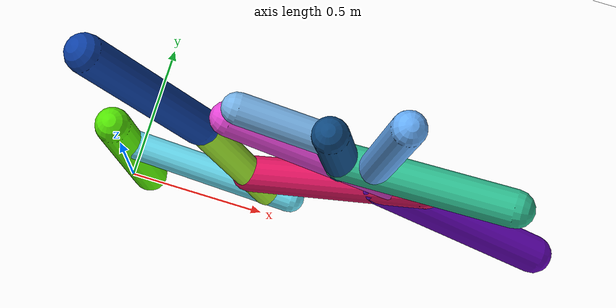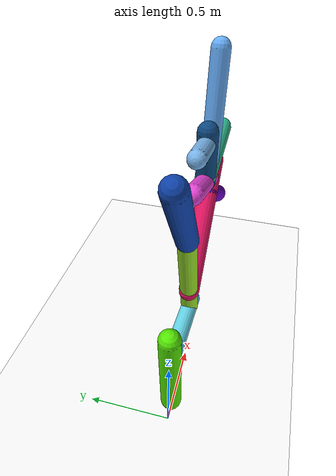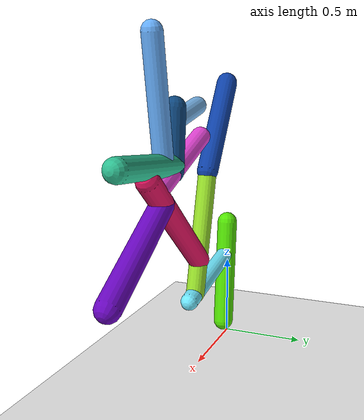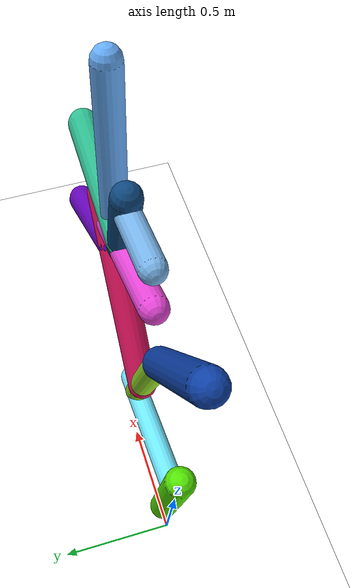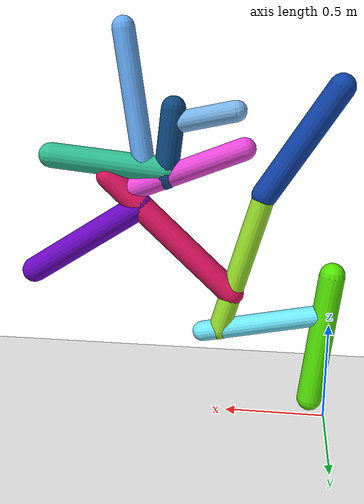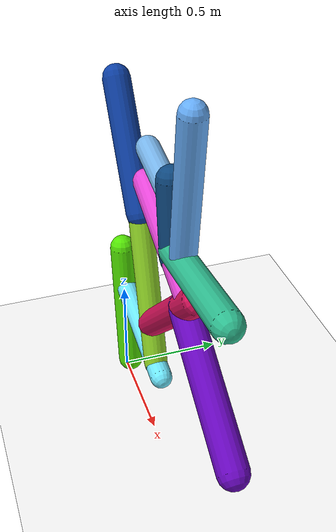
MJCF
<mujoco model="morphology">
  <option timestep="0.01"/>
  <default>
    <default class="/"/>
    <default class="0/"/>
    <default class="0/1/"/>
    <default class="0/1/2/"/>
    <default class="0/1/2/3/"/>
    <default class="0/1/2/4/"/>
    <default class="0/1/2/4/5/"/>
    <default class="0/1/2/4/5/6/"/>
    <default class="0/1/2/4/5/6/7/"/>
    <default class="0/1/2/4/5/6/7/8/"/>
    <default class="0/1/2/4/5/6/9/"/>
    <default class="0/1/2/4/10/"/>
  </default>
  <asset>
    <texture name="texplane" type="2d" builtin="checker" rgb1="0.10000000000000001 0.20000000000000001 0.29999999999999999" rgb2="0.20000000000000001 0.29999999999999999 0.40000000000000002" width="300" height="300"/>
    <material name="MatPlane" class="/" texture="texplane" texrepeat="20 20" specular="1" shininess="1" reflectance="0.5"/>
  </asset>
  <worldbody>
    <light name="//unnamed_light_0" class="/" directional="true" pos="0 0 1.5" dir="0 0 -1.3" cutoff="100" exponent="1" diffuse="1 1 1" specular="0.10000000000000001 0.10000000000000001 0.10000000000000001"/>
    <geom name="ground" class="/" type="plane" size="15 15 0.5" material="MatPlane" rgba="1 1 1 1"/>
    <site name="body" class="/" size="9.9999999999999995e-07 9.9999999999999995e-07 9.9999999999999995e-07" pos="0 0 0.76044527292251585"/>
    <body pos="0 0 0.76044527292251585" name="0/">
      <joint name="0/rootx/" class="/" type="slide" axis="1 0 0" limited="false" stiffness="0" armature="0" damping="0"/>
      <joint name="0/rootz/" class="/" type="slide" axis="0 0 1" limited="false" stiffness="0" armature="0" damping="0"/>
      <joint name="0/rooty/" class="/" type="hinge" axis="0 1 0" limited="false" stiffness="0" armature="0" damping="0"/>
      <geom name="0/geom" class="0/" type="capsule" contype="1" conaffinity="1" condim="3" size="0.062408273367244319" rgba="0.33161644513212596 0.90477864150753562 0.015341065678147414 1" friction="0.59999999999999998 0.10000000000000001 0.10000000000000001" fromto="0 0 0 0.075499958590461658 0 -0.66044529553857001"/>
      <site name="0/end0" class="0/" size="0.0050000000000000001" pos="0.075499958590461658 0 -0.66044529553857001"/>
      <site name="0/attach1" class="0/" size="9.9999999999999995e-07 9.9999999999999995e-07 9.9999999999999995e-07" pos="0.02317041613678775 0 -0.20268610233576639"/>
      <body pos="0.02317041613678775 0 -0.20268610233576639" name="0/1/">
        <joint name="0/1/joint/" class="0/" type="hinge" axis="0 1 0" limited="true" range="-40.633141095285517 40.633141095285517"/>
        <geom name="0/1/geom" class="0/1/" type="capsule" contype="1" conaffinity="1" condim="3" size="0.050626740572416173" rgba="0.43516016931499235 0.91077198790241665 0.99811117985828313 1" friction="0.59999999999999998 0.10000000000000001 0.10000000000000001" fromto="0 0 0 0.59918806983624529 0 -0.12056060662292734"/>
        <site name="0/1/end1" class="0/1/" size="0.0050000000000000001" pos="0.59918806983624529 0 -0.12056060662292734"/>
        <site name="0/1/attach2" class="0/1/" size="9.9999999999999995e-07 9.9999999999999995e-07 9.9999999999999995e-07" pos="0.51672277049591431 0 -0.10396804242763436"/>
        <body pos="0.51672277049591431 0 -0.10396804242763436" name="0/1/2/">
          <joint name="0/1/2/joint/" class="0/1/" type="hinge" axis="0 1 0" limited="true" range="-50.62074529306328 50.62074529306328"/>
          <geom name="0/1/2/geom" class="0/1/2/" type="capsule" contype="1" conaffinity="1" condim="3" size="0.053847392646408844" rgba="0.59620682072397824 0.87615425357209764 0.16448723349275185 1" friction="0.59999999999999998 0.10000000000000001 0.10000000000000001" fromto="0 0 0 -0.20597902554505287 0 0.70004979252250843"/>
          <site name="0/1/2/end2" class="0/1/2/" size="0.0050000000000000001" pos="-0.20597902554505287 0 0.70004979252250843"/>
          <site name="0/1/2/attach3" class="0/1/2/" size="9.9999999999999995e-07 9.9999999999999995e-07 9.9999999999999995e-07" pos="-0.20431257284931606 0 0.69438610972367909"/>
          <body pos="-0.20431257284931606 0 0.69438610972367909" name="0/1/2/3/">
            <joint name="0/1/2/3/joint/" class="0/1/2/" type="hinge" axis="0 1 0" limited="true" range="-61.649365478478231 61.649365478478231"/>
            <geom name="0/1/2/3/geom" class="0/1/2/3/" type="capsule" contype="1" conaffinity="1" condim="3" size="0.062330438733357821" rgba="0.053646704453640837 0.25581050117601123 0.65546794519685947 1" friction="0.59999999999999998 0.10000000000000001 0.10000000000000001" fromto="0 0 0 -0.32644542957926065 0 0.50049081098624826"/>
            <site name="0/1/2/3/end3" class="0/1/2/3/" size="0.0050000000000000001" pos="-0.32644542957926065 0 0.50049081098624826"/>
          </body>
          <site name="0/1/2/attach4" class="0/1/2/" size="9.9999999999999995e-07 9.9999999999999995e-07 9.9999999999999995e-07" pos="-0.05744887869859297 0 0.19524840214764616"/>
          <body pos="-0.05744887869859297 0 0.19524840214764616" name="0/1/2/4/">
            <joint name="0/1/2/4/joint/" class="0/1/2/" type="hinge" axis="0 1 0" limited="true" range="-30.3884402356714 30.3884402356714"/>
            <geom name="0/1/2/4/geom" class="0/1/2/4/" type="capsule" contype="1" conaffinity="1" condim="3" size="0.06212725768543436" rgba="0.88762937560381139 0.075787000197588883 0.37905867447495811 1" friction="0.59999999999999998 0.10000000000000001 0.10000000000000001" fromto="0 0 0 0.60070099394515974 0 0.56938812010222439"/>
            <site name="0/1/2/4/end4" class="0/1/2/4/" size="0.0050000000000000001" pos="0.60070099394515974 0 0.56938812010222439"/>
            <site name="0/1/2/4/attach5" class="0/1/2/4/" size="9.9999999999999995e-07 9.9999999999999995e-07 9.9999999999999995e-07" pos="0.52157639300949787 0 0.49438806477568326"/>
            <body pos="0.52157639300949787 0 0.49438806477568326" name="0/1/2/4/5/">
              <joint name="0/1/2/4/5/joint/" class="0/1/2/4/" type="hinge" axis="0 1 0" limited="true" range="-59.285758113615486 59.285758113615486"/>
              <geom name="0/1/2/4/5/geom" class="0/1/2/4/5/" type="capsule" contype="1" conaffinity="1" condim="3" size="0.055103664954672282" rgba="0.90512630978425546 0.27440317970663153 0.84696145563635894 1" friction="0.59999999999999998 0.10000000000000001 0.10000000000000001" fromto="0 0 0 -0.56813728588925316 0 0.21912153448560689"/>
              <site name="0/1/2/4/5/end5" class="0/1/2/4/5/" size="0.0050000000000000001" pos="-0.56813728588925316 0 0.21912153448560689"/>
              <site name="0/1/2/4/5/attach6" class="0/1/2/4/5/" size="9.9999999999999995e-07 9.9999999999999995e-07 9.9999999999999995e-07" pos="-0.19659873720170012 0 0.075825012797992072"/>
              <body pos="-0.19659873720170012 0 0.075825012797992072" name="0/1/2/4/5/6/">
                <joint name="0/1/2/4/5/6/joint/" class="0/1/2/4/5/" type="hinge" axis="0 1 0" limited="true" range="-50.747436435796843 50.747436435796843"/>
                <geom name="0/1/2/4/5/6/geom" class="0/1/2/4/5/6/" type="capsule" contype="1" conaffinity="1" condim="3" size="0.058726516797242688" rgba="0.055528419692795539 0.28544341866804024 0.50363583345404717 1" friction="0.59999999999999998 0.10000000000000001 0.10000000000000001" fromto="0 0 0 -0.039714523546120706 0 0.32512781393988566"/>
                <site name="0/1/2/4/5/6/end6" class="0/1/2/4/5/6/" size="0.0050000000000000001" pos="-0.039714523546120706 0 0.32512781393988566"/>
                <site name="0/1/2/4/5/6/attach7" class="0/1/2/4/5/6/" size="9.9999999999999995e-07 9.9999999999999995e-07 9.9999999999999995e-07" pos="-0.0042982778689156275 0 0.03518837851859951"/>
                <body pos="-0.0042982778689156275 0 0.03518837851859951" name="0/1/2/4/5/6/7/">
                  <joint name="0/1/2/4/5/6/7/joint/" class="0/1/2/4/5/6/" type="hinge" axis="0 1 0" limited="true" range="-50.14625083598095 50.14625083598095"/>
                  <geom name="0/1/2/4/5/6/7/geom" class="0/1/2/4/5/6/7/" type="capsule" contype="1" conaffinity="1" condim="3" size="0.06145487876017261" rgba="0.18143755716118526 0.74699324713255422 0.5707595235138353 1" friction="0.59999999999999998 0.10000000000000001 0.10000000000000001" fromto="0 0 0 0.56024131985453551 0 0.059405230056452485"/>
                  <site name="0/1/2/4/5/6/7/end7" class="0/1/2/4/5/6/7/" size="0.0050000000000000001" pos="0.56024131985453551 0 0.059405230056452485"/>
                  <site name="0/1/2/4/5/6/7/attach8" class="0/1/2/4/5/6/7/" size="9.9999999999999995e-07 9.9999999999999995e-07 9.9999999999999995e-07" pos="0.10593144504349987 0 0.011232448660972536"/>
                  <body pos="0.10593144504349987 0 0.011232448660972536" name="0/1/2/4/5/6/7/8/">
                    <joint name="0/1/2/4/5/6/7/8/joint/" class="0/1/2/4/5/6/7/" type="hinge" axis="0 1 0" limited="true" range="-48.479692798019798 48.479692798019798"/>
                    <geom name="0/1/2/4/5/6/7/8/geom" class="0/1/2/4/5/6/7/8/" type="capsule" contype="1" conaffinity="1" condim="3" size="0.053362960644501078" rgba="0.40044778997859332 0.68072293073565115 0.97867588996948862 1" friction="0.59999999999999998 0.10000000000000001 0.10000000000000001" fromto="0 0 0 0.087214634554555914 0 0.63742491694176584"/>
                    <site name="0/1/2/4/5/6/7/8/end8" class="0/1/2/4/5/6/7/8/" size="0.0050000000000000001" pos="0.087214634554555914 0 0.63742491694176584"/>
                  </body>
                </body>
                <site name="0/1/2/4/5/6/attach9" class="0/1/2/4/5/6/" size="9.9999999999999995e-07 9.9999999999999995e-07 9.9999999999999995e-07" pos="-0.031201688361056874 0 0.25543644546769106"/>
                <body pos="-0.031201688361056874 0 0.25543644546769106" name="0/1/2/4/5/6/9/">
                  <joint name="0/1/2/4/5/6/9/joint/" class="0/1/2/4/5/6/" type="hinge" axis="0 1 0" limited="true" range="-39.648360716127563 39.648360716127563"/>
                  <geom name="0/1/2/4/5/6/9/geom" class="0/1/2/4/5/6/9/" type="capsule" contype="1" conaffinity="1" condim="3" size="0.050402523478131865" rgba="0.46887218050691093 0.70476973879423666 0.91398405681913519 1" friction="0.59999999999999998 0.10000000000000001 0.10000000000000001" fromto="0 0 0 -0.29891923598342468 0 0.061583813148457178"/>
                  <site name="0/1/2/4/5/6/9/end9" class="0/1/2/4/5/6/9/" size="0.0050000000000000001" pos="-0.29891923598342468 0 0.061583813148457178"/>
                </body>
              </body>
            </body>
            <site name="0/1/2/4/attach10" class="0/1/2/4/" size="9.9999999999999995e-07 9.9999999999999995e-07 9.9999999999999995e-07" pos="0.44910040600977752 0 0.42569004961293255"/>
            <body pos="0.44910040600977752 0 0.42569004961293255" name="0/1/2/4/10/">
              <geom name="0/1/2/4/10/geom" class="0/1/2/4/10/" type="capsule" contype="1" conaffinity="1" condim="3" size="0.063427349035879987" rgba="0.4110472158395303 0.021823549590648805 0.75374610649429863 1" friction="0.59999999999999998 0.10000000000000001 0.10000000000000001" fromto="0 0 0 0.54846901837314643 0 -0.34891997513849049"/>
              <site name="0/1/2/4/10/end10" class="0/1/2/4/10/" size="0.0050000000000000001" pos="0.54846901837314643 0 -0.34891997513849049"/>
            </body>
          </body>
        </body>
      </body>
      <camera name="0/side" class="0/" mode="trackcom" pos="0.40000000000000002 -4 0.20000000000000001" quat="0.70699999999999996 0.70699999999999996 0 0"/>
    </body>
  </worldbody>
  <actuator>
    <motor name="0/1/motor" class="0/1/" ctrllimited="true" ctrlrange="-1 1" gear="73" joint="0/1/joint/"/>
    <motor name="0/1/2/motor" class="0/1/2/" ctrllimited="true" ctrlrange="-1 1" gear="54" joint="0/1/2/joint/"/>
    <motor name="0/1/2/3/motor" class="0/1/2/3/" ctrllimited="true" ctrlrange="-1 1" gear="57" joint="0/1/2/3/joint/"/>
    <motor name="0/1/2/4/motor" class="0/1/2/4/" ctrllimited="true" ctrlrange="-1 1" gear="85" joint="0/1/2/4/joint/"/>
    <motor name="0/1/2/4/5/motor" class="0/1/2/4/5/" ctrllimited="true" ctrlrange="-1 1" gear="66" joint="0/1/2/4/5/joint/"/>
    <motor name="0/1/2/4/5/6/motor" class="0/1/2/4/5/6/" ctrllimited="true" ctrlrange="-1 1" gear="75" joint="0/1/2/4/5/6/joint/"/>
    <motor name="0/1/2/4/5/6/7/motor" class="0/1/2/4/5/6/7/" ctrllimited="true" ctrlrange="-1 1" gear="71" joint="0/1/2/4/5/6/7/joint/"/>
    <motor name="0/1/2/4/5/6/7/8/motor" class="0/1/2/4/5/6/7/8/" ctrllimited="true" ctrlrange="-1 1" gear="60" joint="0/1/2/4/5/6/7/8/joint/"/>
    <motor name="0/1/2/4/5/6/9/motor" class="0/1/2/4/5/6/9/" ctrllimited="true" ctrlrange="-1 1" gear="58" joint="0/1/2/4/5/6/9/joint/"/>
  </actuator>
  <sensor>
    <subtreelinvel name="velocity" body="0/"/>
  </sensor>
</mujoco>
